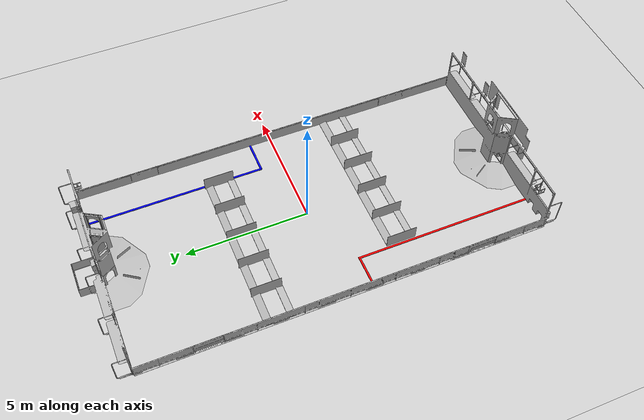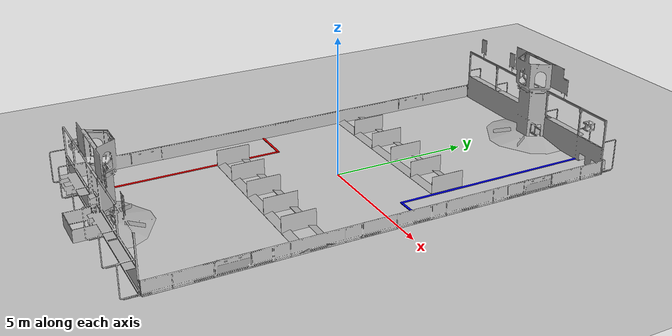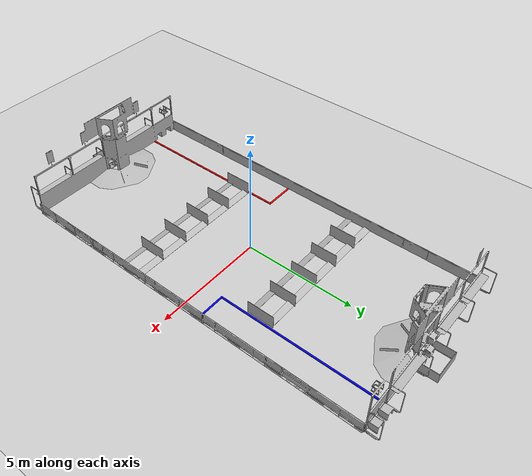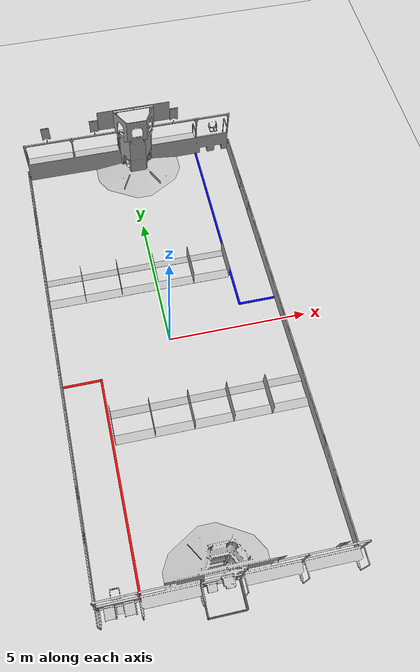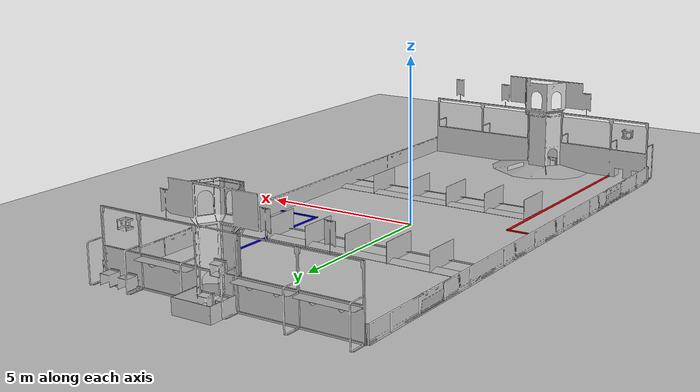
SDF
<sdf version="1.7">
 <world name="default">
  <light name="sun" type="directional">
   <pose>0 0 10 0 -0 0</pose>
   <diffuse>0.8 0.8 0.8 1</diffuse>
   <specular>0.2 0.2 0.2 1</specular>
   <attenuation>
    <range>1000</range>
    <constant>0.9</constant>
    <linear>0.01</linear>
    <quadratic>0.001</quadratic>
   </attenuation>
   <direction>-0.5 0.1 -0.9</direction>
   <spot><inner_angle>0</inner_angle><outer_angle>0</outer_angle><falloff>0</falloff></spot>
  </light>
  <model name="ground_plane">
   <static>1</static>
   <link name="link">
    <collision name="collision">
     <geometry><plane><normal>0 0 1</normal><size>100 100</size></plane></geometry>
     <surface><friction><ode><mu>100</mu><mu2>50</mu2></ode></friction></surface>
    </collision>
    <visual name="visual">
     <cast_shadows>0</cast_shadows>
     <geometry><plane><normal>0 0 1</normal><size>100 100</size></plane></geometry>
     <material>
      <script><uri>file://media/materials/scripts/gazebo.material</uri><name>Gazebo/Grey</name></script>
     </material>
    </visual>
   </link>
  </model>
  <gravity>0 0 -9.8</gravity>
  <magnetic_field>6e-06 2.3e-05 -4.2e-05</magnetic_field>
  <atmosphere type="adiabatic"/>
  <physics type="ode">
   <max_step_size>0.001</max_step_size>
   <real_time_factor>1</real_time_factor>
   <real_time_update_rate>1000</real_time_update_rate>
  </physics>
  <scene><ambient>0.4 0.4 0.4 1</ambient><background>0.7 0.7 0.7 1</background><shadows>1</shadows></scene>
  <audio><device>default</device></audio>
  <spherical_coordinates>
   <surface_model>EARTH_WGS84</surface_model>
   <latitude_deg>0</latitude_deg>
   <longitude_deg>0</longitude_deg>
   <elevation>0</elevation>
   <heading_deg>0</heading_deg>
  </spherical_coordinates>
  <model name="frc2016_field">
   <static>1</static>
   <link name="walls">
    <visual name="walls_visual">
     <geometry><mesh><uri>model://frc2016_field/meshes/walls.dae</uri></mesh></geometry>
    </visual>
    <collision name="front_turret">
     <geometry><mesh><uri>model://frc2016_field/meshes/turret_collide.dae</uri></mesh></geometry>
    </collision>
    <collision name="back_turret">
     <pose>0 0 0 0 -0 3.1415</pose>
     <geometry><mesh><uri>model://frc2016_field/meshes/turret_collide.dae</uri></mesh></geometry>
    </collision>
    <collision name="left_wall">
     <pose>4.09997 0 0.2413 0 -0 0</pose>
     <geometry><box><size>0.1 16.4592 0.4826</size></box></geometry>
    </collision>
    <collision name="right_wall">
     <pose>-4.09997 0 0.2413 0 -0 0</pose>
     <geometry><box><size>0.1 16.4592 0.4826</size></box></geometry>
    </collision>
    <collision name="front_solid_wall">
     <pose>-2.2105 8.2196 1 0 -0 0</pose>
     <geometry><box><size>3.8 0.1 2</size></box></geometry>
    </collision>
    <collision name="back_solid_wall">
     <pose>2.2105 -8.2196 1 0 -0 0</pose>
     <geometry><box><size>3.8 0.1 2</size></box></geometry>
    </collision>
    <collision name="front_partial_wall">
     <pose>1.85 8.2196 1 0 -0 0</pose>
     <geometry><box><size>2.1 0.1 2</size></box></geometry>
    </collision>
    <collision name="front_partial_wall_mid">
     <pose>3.4 8.2196 0.86 0 -0 0</pose>
     <geometry><box><size>1.25 0.1 1.12</size></box></geometry>
    </collision>
    <collision name="front_partial_wall_lower_left">
     <pose>3.36 8.2196 0.25 0 -0 0</pose>
     <geometry><box><size>0.3 0.1 0.5</size></box></geometry>
    </collision>
    <collision name="front_partial_wall_lower_right">
     <pose>4 8.2196 0.25 0 -0 0</pose>
     <geometry><box><size>0.3 0.1 0.5</size></box></geometry>
    </collision>
    <collision name="front_partial_wall_upper_right">
     <pose>3.76 8.2196 1.7 0 -0 0</pose>
     <geometry><box><size>0.54 0.1 0.6</size></box></geometry>
    </collision>
    <collision name="front_partial_wall_upper_left">
     <pose>2.95 8.2196 1.7 0 -0 0</pose>
     <geometry><box><size>0.54 0.1 0.6</size></box></geometry>
    </collision>
    <collision name="front_partial_wall_upper_mid">
     <pose>3.36 8.2196 1.84 0 -0 0</pose>
     <geometry><box><size>0.3 0.1 0.3</size></box></geometry>
    </collision>
    <collision name="back_partial_wall">
     <pose>-1.85 -8.2196 1 0 -0 0</pose>
     <geometry><box><size>2.1 0.1 2</size></box></geometry>
    </collision>
    <collision name="back_partial_wall_mid">
     <pose>-3.4 -8.2196 0.86 0 -0 0</pose>
     <geometry><box><size>1.25 0.1 1.12</size></box></geometry>
    </collision>
    <collision name="back_partial_wall_lower_left">
     <pose>-3.36 -8.2196 0.25 0 -0 0</pose>
     <geometry><box><size>0.3 0.1 0.5</size></box></geometry>
    </collision>
    <collision name="back_partial_wall_lower_right">
     <pose>-4 -8.2196 0.25 0 -0 0</pose>
     <geometry><box><size>0.3 0.1 0.5</size></box></geometry>
    </collision>
    <collision name="back_partial_wall_upper_right">
     <pose>-3.76 -8.2196 1.7 0 -0 0</pose>
     <geometry><box><size>0.54 0.1 0.6</size></box></geometry>
    </collision>
    <collision name="back_partial_wall_upper_left">
     <pose>-2.95 -8.2196 1.7 0 -0 0</pose>
     <geometry><box><size>0.54 0.1 0.6</size></box></geometry>
    </collision>
    <collision name="back_partial_wall_upper_mid">
     <pose>-3.36 -8.2196 1.84 0 -0 0</pose>
     <geometry><box><size>0.3 0.1 0.3</size></box></geometry>
    </collision>
    <visual name="blue_passage_border_long">
     <pose>2.72665 4.5882 0.0127 0 -0 0</pose>
     <geometry><box><size>0.0762 7.3025 0.0254</size></box></geometry>
     <material><ambient>0 0 1 1</ambient><diffuse>0 0 1 1</diffuse></material>
    </visual>
    <collision name="blue_passage_border_long">
     <pose>2.72665 4.5882 0.0127 0 -0 0</pose>
     <geometry><box><size>0.0762 7.3025 0.0254</size></box></geometry>
    </collision>
    <visual name="blue_passage_border_short">
     <pose>3.37435 0.97352 0.0127 0 -0 0</pose>
     <geometry><box><size>1.37165 0.0762 0.0254</size></box></geometry>
     <material><ambient>0 0 1 1</ambient><diffuse>0 0 1 1</diffuse></material>
    </visual>
    <collision name="blue_passage_border_short">
     <pose>3.37435 0.97352 0.0127 0 -0 0</pose>
     <geometry><box><size>1.37165 0.0762 0.0254</size></box></geometry>
    </collision>
    <visual name="blue_divider_1">
     <pose>2.63052 2.80648 0.31114 0 -0 0</pose>
     <geometry><box><size>0.009525 1.2192 0.6096</size></box></geometry>
    </visual>
    <collision name="blue_divider_1">
     <pose>2.63052 2.80648 0.31114 0 -0 0</pose>
     <geometry><box><size>0.009525 1.2192 0.6096</size></box></geometry>
    </collision>
    <visual name="blue_divider_2">
     <pose>1.28432 2.80648 0.31114 0 -0 0</pose>
     <geometry><box><size>0.009525 1.2192 0.6096</size></box></geometry>
    </visual>
    <collision name="blue_divider_2">
     <pose>1.28432 2.80648 0.31114 0 -0 0</pose>
     <geometry><box><size>0.009525 1.2192 0.6096</size></box></geometry>
    </collision>
    <visual name="blue_divider_3">
     <pose>-0.06189 2.80648 0.31114 0 -0 0</pose>
     <geometry><box><size>0.009525 1.2192 0.6096</size></box></geometry>
    </visual>
    <collision name="blue_divider_3">
     <pose>-0.06189 2.80648 0.31114 0 -0 0</pose>
     <geometry><box><size>0.009525 1.2192 0.6096</size></box></geometry>
    </collision>
    <visual name="blue_divider_4">
     <pose>-1.40809 2.80648 0.31114 0 -0 0</pose>
     <geometry><box><size>0.009525 1.2192 0.6096</size></box></geometry>
    </visual>
    <collision name="blue_divider_4">
     <pose>-1.40809 2.80648 0.31114 0 -0 0</pose>
     <geometry><box><size>0.009525 1.2192 0.6096</size></box></geometry>
    </collision>
    <visual name="blue_divider_5">
     <pose>-2.75428 2.80648 0.31114 0 -0 0</pose>
     <geometry><box><size>0.009525 1.2192 0.6096</size></box></geometry>
    </visual>
    <collision name="blue_divider_5">
     <pose>-2.75428 2.80648 0.31114 0 -0 0</pose>
     <geometry><box><size>0.009525 1.2192 0.6096</size></box></geometry>
    </collision>
    <visual name="blue_barrier_ramp_up">
     <pose>-0.7334 3.22301 0.05063 -0.248866 0 0</pose>
     <geometry><box><size>6.71817 0.3048 0.00635</size></box></geometry>
    </visual>
    <collision name="blue_barrier_ramp_up">
     <pose>-0.7334 3.22301 0.05063 -0.248866 0 0</pose>
     <geometry><box><size>6.71817 0.3048 0.00635</size></box></geometry>
    </collision>
    <visual name="blue_barrier_ramp_down">
     <pose>-0.7334 2.31802 0.05063 0.248866 -0 0</pose>
     <geometry><box><size>6.71817 0.3048 0.00635</size></box></geometry>
    </visual>
    <collision name="blue_barrier_ramp_down">
     <pose>-0.7334 2.31802 0.05063 0.248866 -0 0</pose>
     <geometry><box><size>6.71817 0.3048 0.00635</size></box></geometry>
    </collision>
    <visual name="red_passage_border_long">
     <pose>-2.7273 -4.58839 0.0127 0 -0 0</pose>
     <geometry><box><size>0.0762 7.3025 0.0254</size></box></geometry>
     <material><ambient>1 0 0 1</ambient><diffuse>1 0 0 1</diffuse></material>
    </visual>
    <collision name="red_passage_border_long">
     <pose>-2.7273 -4.58839 0.0127 0 -0 0</pose>
     <geometry><box><size>0.0762 7.3025 0.0254</size></box></geometry>
    </collision>
    <visual name="red_passage_border_short">
     <pose>-3.375 -0.97372 0.0127 0 -0 0</pose>
     <geometry><box><size>1.37165 0.0762 0.0254</size></box></geometry>
     <material><ambient>1 0 0 1</ambient><diffuse>1 0 0 1</diffuse></material>
    </visual>
    <collision name="red_passage_border_short">
     <pose>-3.375 -0.97372 0.0127 0 -0 0</pose>
     <geometry><box><size>1.37165 0.0762 0.0254</size></box></geometry>
    </collision>
    <visual name="red_divider_1">
     <pose>-2.63117 -2.76442 0.31114 0 -0 0</pose>
     <geometry><box><size>0.009525 1.2192 0.6096</size></box></geometry>
    </visual>
    <collision name="red_divider_1">
     <pose>-2.63117 -2.72845 0.31114 0 -0 0</pose>
     <geometry><box><size>0.009525 1.2192 0.6096</size></box></geometry>
    </collision>
    <visual name="red_divider_2">
     <pose>-1.28496 -2.76442 0.31114 0 -0 0</pose>
     <geometry><box><size>0.009525 1.2192 0.6096</size></box></geometry>
    </visual>
    <collision name="red_divider_2">
     <pose>-1.28496 -2.76442 0.31114 0 -0 0</pose>
     <geometry><box><size>0.009525 1.2192 0.6096</size></box></geometry>
    </collision>
    <visual name="red_divider_3">
     <pose>0.06124 -2.76442 0.31114 0 -0 0</pose>
     <geometry><box><size>0.009525 1.2192 0.6096</size></box></geometry>
    </visual>
    <collision name="red_divider_3">
     <pose>0.06124 -2.76442 0.31114 0 -0 0</pose>
     <geometry><box><size>0.009525 1.2192 0.6096</size></box></geometry>
    </collision>
    <visual name="red_divider_4">
     <pose>1.40744 -2.76442 0.31114 0 -0 0</pose>
     <geometry><box><size>0.009525 1.2192 0.6096</size></box></geometry>
    </visual>
    <collision name="red_divider_4">
     <pose>1.40744 -2.76442 0.31114 0 -0 0</pose>
     <geometry><box><size>0.009525 1.2192 0.6096</size></box></geometry>
    </collision>
    <visual name="red_divider_5">
     <pose>2.75363 -2.76442 0.31114 0 -0 0</pose>
     <geometry><box><size>0.009525 1.2192 0.6096</size></box></geometry>
    </visual>
    <collision name="red_divider_5">
     <pose>2.75363 -2.76442 0.31114 0 -0 0</pose>
     <geometry><box><size>0.009525 1.2192 0.6096</size></box></geometry>
    </collision>
    <visual name="red_barrier_ramp_down">
     <pose>0.73275 -2.31261 0.05063 -0.248866 0 0</pose>
     <geometry><box><size>6.71817 0.3048 0.00635</size></box></geometry>
    </visual>
    <collision name="red_barrier_ramp_down">
     <pose>0.73275 -2.31261 0.05063 -0.248866 0 0</pose>
     <geometry><box><size>6.71817 0.3048 0.00635</size></box></geometry>
    </collision>
    <visual name="red_barrier_ramp_up">
     <pose>0.73275 -3.21691 0.05063 0.248866 -0 0</pose>
     <geometry><box><size>6.71817 0.3048 0.00635</size></box></geometry>
    </visual>
    <collision name="red_barrier_ramp_up">
     <pose>0.73275 -3.21691 0.05063 0.248866 -0 0</pose>
     <geometry><box><size>6.71817 0.3048 0.00635</size></box></geometry>
    </collision>
   </link>
   <pose>0.070954 -0.076481 0 0 -0 0</pose>
  </model>
 </world>
</sdf>
